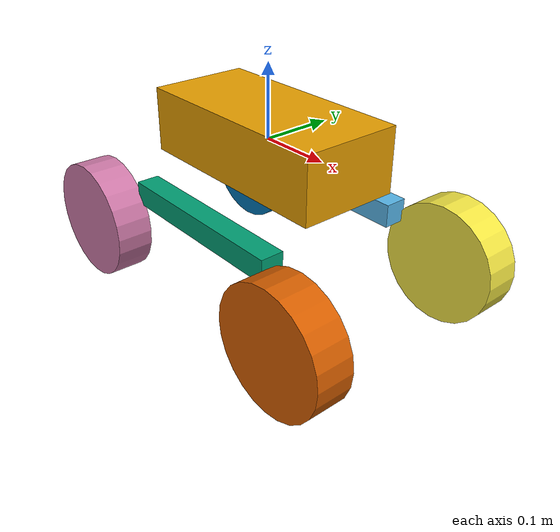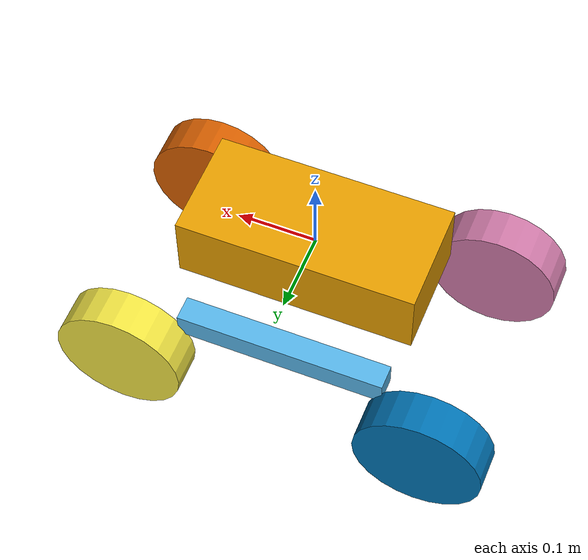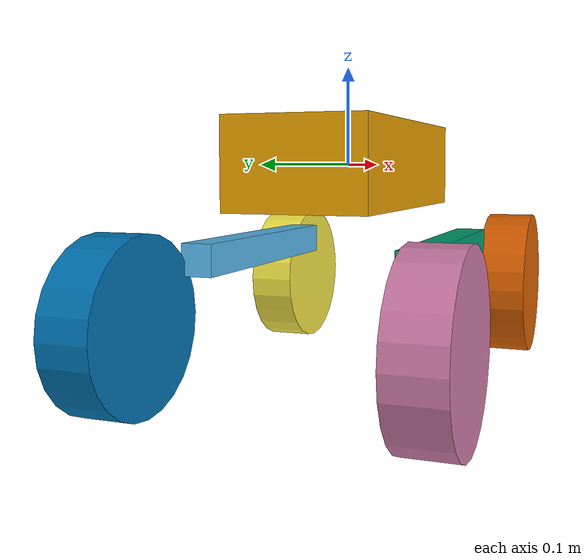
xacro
<?xml version="1.0"?>
<robot name="gears_smp" xmlns:xacro="http://www.ros.org/wiki/xacro">
<!--
    A rough model of the Gears SMP rover. Details at http://www.gearseds.com/surface_mobility_platform.html
-->
    <!-- Add relevant macros -->
    <xacro:include filename="$(find testrover_description)/urdf/macros/components/wheel.urdf.xacro" />
    <xacro:include filename="$(find testrover_description)/urdf/macros/components/rocker.urdf.xacro" />

    <xacro:property name="PI" value="3.1415926535897931" />

    <!-- All dimensions in SI units (kg, m, etc.)-->

    <!-- Chassis dimensions -->
    <xacro:property name="chassis_length" value=".30"/>
    <xacro:property name="chassis_width" value=".14"/>
    <xacro:property name="chassis_height" value=".0889"/>
    <xacro:property name="chassis_mass" value="1.584994"/>

    <!-- Rocker dimensions and positioning -->
    <xacro:property name="rocker_length" value=".2667"/>
    <xacro:property name="rocker_width" value=".03175"/>
    <xacro:property name="rocker_height" value=".03175"/>
    <xacro:property name="rocker_mass" value="1.387336"/>

    <xacro:property name="rocker_x" value="0.0"/>
    <xacro:property name="rocker_y" value="${0.12065-0.5*rocker_width}"/>
    <xacro:property name="rocker_z" value="0.090242"/>

    <!-- Wheel dimensions -->
    <xacro:property name="wheel_radius" value="0.08255"/>
    <xacro:property name="wheel_depth" value=".0508"/>
    <xacro:property name="wheel_mass" value="0.283642"/>

    <!-- Wheel positioning -->
    <xacro:property name="wheel_spacing_x" value="0.19678256"/>
    <xacro:property name="wheel_spacing_y" value="0.0381365"/>
    <xacro:property name="wheel_spacing_z" value="-0.05257042"/>

    <!-- Create base_link for central robot chassis -->
    <link name="base_link">
        <visual>
            <origin xyz="0 0 0" rpy="0 0 0"/>
            <geometry>
                <box size="${chassis_length} ${chassis_width} ${chassis_height}"/>
            </geometry>
        </visual>
        <collision>
            <origin xyz="0 0 0" rpy="0 0 0"/>
            <geometry>
                <box size="${chassis_length} ${chassis_width} ${chassis_height}"/>
            </geometry>
        </collision>
        <inertial>
            <origin xyz="0 0 0" rpy="0 0 0"/>
            <mass value="${chassis_mass}"/>
            <inertia
                ixx="0.01042" ixy="0.001177" ixz="-0.0008871"
                iyy="0.01045" iyz="0.0002226"
                izz="0.01817"/>
            </inertial>
    </link>

    <!-- Add the rockers -->
    <xacro:rocker prefix="left" parent="base_link" rockerx="${rocker_length}" rockery="${rocker_width}" rockerz="${rocker_height}" rockerkg="${rocker_mass}" mimicing="0" mimic_joint="">
        <origin xyz="${rocker_x} ${rocker_y} ${-rocker_z}" rpy="0 0 0"/>
        <inertia
            ixx="0.002956" ixy="-0.000001489324" ixz="-0.000008103407"
            iyy="0.02924"  iyz="0.00007112"
            izz="0.02832"/>
    </xacro:rocker>

    <xacro:rocker prefix="right" parent="base_link" rockerx="${rocker_length}" rockery="${rocker_width}" rockerz="${rocker_height}" rockerkg="${rocker_mass}"  mimicing="1" mimic_joint="left_rocker_joint">
        <origin xyz="${rocker_x} ${-rocker_y} ${-rocker_z}" rpy="0 0 0"/>
        <inertia
            ixx="0.002956" ixy="-0.000001489324" ixz="-0.000008103407"
            iyy="0.02924"  iyz="0.00007112"
            izz="0.02832"/>
    </xacro:rocker>

    <!-- Add the wheels -->
    <xacro:wheel prefix="front_left" parent="left_rocker_link" wheelrad="${wheel_radius}" wheeldepth="${wheel_depth}" wheelkg="${wheel_mass}" >
        <origin xyz="${wheel_spacing_x} ${wheel_spacing_y} ${wheel_spacing_z}" rpy="0 0 0"/>
        <inertia
            ixx="0.000391"  ixy="0.00000123962" ixz="5.52582e-7"
            iyy="0.0004716" iyz="-0.000002082042"
            izz="0.000391"/>
    </xacro:wheel>

    <xacro:wheel prefix="rear_left" parent="left_rocker_link" wheelrad="${wheel_radius}" wheeldepth="${wheel_depth}" wheelkg="${wheel_mass}">
        <origin xyz="${-wheel_spacing_x} ${wheel_spacing_y} ${wheel_spacing_z}" rpy="0 0 0"/>
        <inertia
            ixx="0.000391"  ixy="0.00000123962" ixz="5.52582e-7"
            iyy="0.0004716" iyz="-0.000002082042"
            izz="0.000391"/>
    </xacro:wheel>

    <xacro:wheel prefix="front_right" parent="right_rocker_link" wheelrad="${wheel_radius}" wheeldepth="${wheel_depth}" wheelkg="${wheel_mass}">
        <origin xyz="${wheel_spacing_x} ${-wheel_spacing_y} ${wheel_spacing_z}" rpy="0 0 0"/>
        <inertia
            ixx="0.000391"  ixy="0.00000123962" ixz="5.52582e-7"
            iyy="0.0004716" iyz="-0.000002082042"
            izz="0.000391"/>
    </xacro:wheel>

    <xacro:wheel prefix="rear_right" parent="right_rocker_link" wheelrad="${wheel_radius}" wheeldepth="${wheel_depth}" wheelkg="${wheel_mass}">
        <origin xyz="${-wheel_spacing_x} ${-wheel_spacing_y} ${wheel_spacing_z}" rpy="0 0 0"/>
        <inertia
            ixx="0.000391"  ixy="0.00000123962" ixz="5.52582e-7"
            iyy="0.0004716" iyz="-0.000002082042"
            izz="0.000391"/>
    </xacro:wheel>

    <!-- Add the differential suspenion sim plugin and reference the two rockers, as well as the force constant between them -->
    <gazebo>
        <plugin name="rover_gazebo_diff_plugin" filename="librover_gazebo_diff_plugin.so">
            <jointA>left_rocker_joint</jointA>
            <jointB>right_rocker_joint</jointB>
            <forceConstant>100.0</forceConstant>
        </plugin>
    </gazebo>

        <!-- Load the Gazebo-ROS Control interface -->
    <gazebo>
        <plugin name="gazebo_ros_control" filename="libgazebo_ros_control.so">
        </plugin>
    </gazebo>

</robot>

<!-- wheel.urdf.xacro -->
<!-- define xacro as the namespace referencing the xacro format. Important for compiling xacro files and macros-->
<robot xmlns:xacro="http://www.ros.org/wiki/xacro">

<!-- Macro detailing the details of each wheel -->
<xacro:macro name="wheel" params="prefix parent wheelrad wheeldepth wheelkg *origin">

    <!-- Create a link for the wheels -->
    <link name="${prefix}_wheel_link">
        <visual>
            <!-- Set origin to be rotated 90 degrees to have base on ground -->
            <origin xyz="0 0 0" rpy="${PI/2} 0 0"/>
            <geometry>
                <cylinder radius="${wheelrad}" length="${wheeldepth}"/>
            </geometry>
        </visual>

        <collision>
            <origin xyz="0 0 0" rpy="${PI/2} 0 0"/>
            <geometry>
                <cylinder radius="${wheelrad}" length="${wheeldepth}"/>
            </geometry>
        </collision>

        <!-- Inertial values are required for Gazebo -->
        <inertial>
            <origin xyz="0 0 0" rpy="0 0 0"/>
            <mass value="${wheelkg}"/>
            <inertia
                ixx="0.000391"  ixy="0.00000123962" ixz="5.52582e-7"
                iyy="0.0004716" iyz="-0.000002082042"
                izz="0.000391"/>
        </inertial>
    </link>

    <joint name="${prefix}_wheel" type="continuous">
        <parent link="${parent}"/>
        <child link="${prefix}_wheel_link"/>

        <!--
            Use insert_block to specify joint (and wheel) position in wheel declaration
        -->
        <xacro:insert_block name="origin"/>

        <!-- Specify rotation axis of wheel -->
        <axis xyz="0 1 0"/>
    </joint>

    <!-- Transission for Gazebo -->
    <transmission name="${prefix}_wheel_trans">
        <type>transmission_interface/SimpleTransmission</type>
        <!--
            Reference the joint in Gazebo. We want a velocity interface here,
            as we want to be able to control the speed of the rover.
        -->
        <joint name="${prefix}_wheel">
            <hardwareInterface>hardware_interface/VelocityJointInterface</hardwareInterface>
        </joint>
        <actuator name="${prefix}_actuator">
            <hardwareInterface>hardware_interface/VelocityJointInterface</hardwareInterface>
            <mechanicalreduction>1</mechanicalreduction>
        </actuator>
    </transmission>

</xacro:macro>

</robot>

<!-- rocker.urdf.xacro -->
<!-- define xacro as the namespace referencing the xacro format. Important for compiling xacro files and macros-->
<robot xmlns:xacro="http://www.ros.org/wiki/xacro">

<!-- Description for a simple rocker bar. Could also be used as a bogie? -->
<xacro:macro name="rocker" params="prefix parent rockerx rockery rockerz rockerkg mimicing mimic_joint *origin">

    <!-- Create a link for the wheels -->
    <link name="${prefix}_rocker_link">
        <visual>
            <!-- Set origin to be rotated 90 degrees to have base on ground -->
            <origin xyz="0 0 0" rpy="0 0 0"/>
            <geometry>
                <box size="${rockerx} ${rockery} ${rockerz}"/>
            </geometry>
        </visual>

        <collision>
            <origin xyz="0 0 0" rpy="0 0 0"/>
            <geometry>
                <box size="${rockerx} ${rockery} ${rockerz}"/>
            </geometry>
        </collision>

        <!-- Inertial and mass values are required for Gazebo, but they do not need to be accurate for most applications -->
        <inertial>
            <origin xyz="0 0 0" rpy="0 0 0"/>
            <mass value="${rockerkg}"/>
            <inertia
                ixx="0.002956" ixy="-0.000001489324" ixz="-0.000008103407"
                iyy="0.02924"  iyz="0.00007112"
                izz="0.02832"/>
        </inertial>
    </link>

    <joint name="${prefix}_rocker_joint" type="revolute">
        <parent link="${parent}"/>
        <child link="${prefix}_rocker_link"/>

        <!--
            Use insert_block to specify joint (and wheel) position in wheel declaration
        -->
        <xacro:insert_block name="origin"/>

        <!-- Specify rotation axis of wheel -->
        <axis xyz="0 1 0"/>
        <limit effort="100.0" lower="-0.24" upper="0.24" velocity="100.0"/>

        <!-- Set joint to mimic another joint specified above if true -->
        <xacro:if value="${mimicing == 1}">
        <mimic joint= "${mimic_joint}"/>
        </xacro:if>
    </joint>

</xacro:macro>

</robot>
